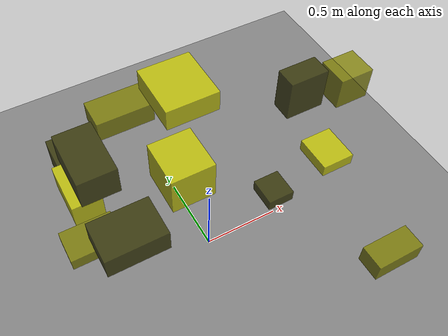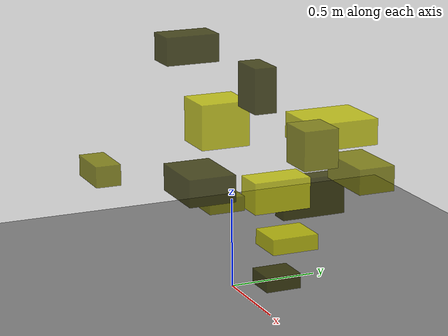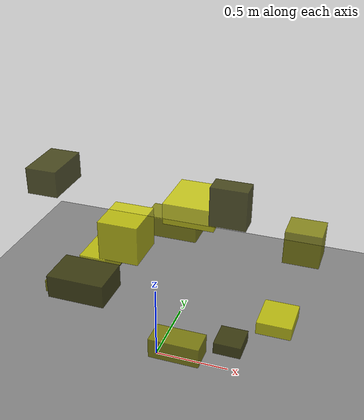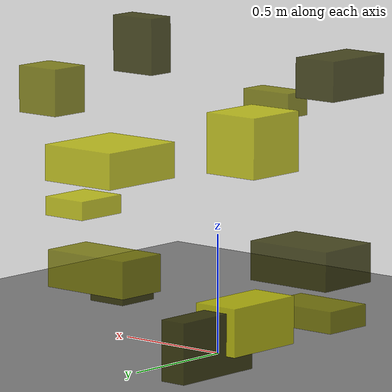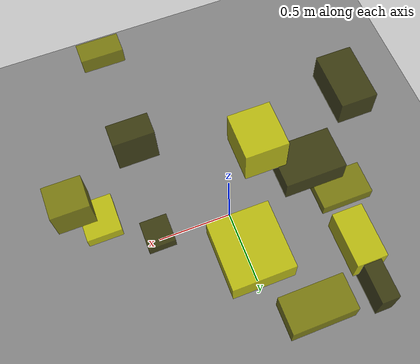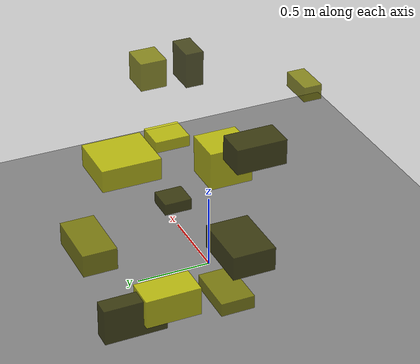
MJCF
<?xml version="1.0"?>
<mujoco model="obstacle_scene">
  <compiler angle="radian" coordinate="local"/>
  <option timestep="0.001" gravity="0 0 -9.81"/>

  <asset>
    <material name="obstacle_mat" rgba="0.8 0.8 0.0 0.8"/>
    <material name="ground_mat" rgba="0.5 0.5 0.5 1"/>
  </asset>

  <worldbody>
    <!-- Ground plane -->
    <geom name="ground" type="plane" size="3 3 0.1" material="ground_mat"/>

    <!-- Obstacles -->
    <body name="obstacle_0" pos="-0.631547 0.791161 0.254229">
      <geom name="obs_0" type="box" size="0.057613 0.202608 0.121453" rgba="0.2 0.2 0.0 0.8"/>
    </body>
    <body name="obstacle_1" pos="0.466492 -0.914525 0.896250">
      <geom name="obs_1" type="box" size="0.126064 0.063356 0.052849" rgba="0.5 0.5 0.0 0.8"/>
    </body>
    <body name="obstacle_2" pos="-0.631324 0.563891 0.302311">
      <geom name="obs_2" type="box" size="0.099653 0.179478 0.096220" rgba="0.8 0.8 0.0 0.8"/>
    </body>
    <body name="obstacle_3" pos="0.501623 0.033879 0.204984">
      <geom name="obs_3" type="box" size="0.090062 0.096726 0.040646" rgba="0.2 0.2 0.0 0.8"/>
    </body>
    <body name="obstacle_4" pos="-0.689327 0.200167 0.292942">
      <geom name="obs_4" type="box" size="0.167382 0.109307 0.044306" rgba="0.5 0.5 0.0 0.8"/>
    </body>
    <body name="obstacle_5" pos="0.799674 -0.050979 0.521522">
      <geom name="obs_5" type="box" size="0.105146 0.122561 0.039962" rgba="0.8 0.8 0.0 0.8"/>
    </body>
    <body name="obstacle_6" pos="-0.649656 0.007345 1.225937">
      <geom name="obs_6" type="box" size="0.096701 0.158643 0.080934" rgba="0.2 0.2 0.0 0.8"/>
    </body>
    <body name="obstacle_7" pos="0.891989 0.040637 1.020703">
      <geom name="obs_7" type="box" size="0.103002 0.091441 0.099724" rgba="0.5 0.5 0.0 0.8"/>
    </body>
    <body name="obstacle_8" pos="-0.177455 -0.011180 0.903135">
      <geom name="obs_8" type="box" size="0.125837 0.140218 0.125700" rgba="0.8 0.8 0.0 0.8"/>
    </body>
    <body name="obstacle_9" pos="0.481485 -0.069865 1.238958">
      <geom name="obs_9" type="box" size="0.106497 0.059200 0.118023" rgba="0.2 0.2 0.0 0.8"/>
    </body>
    <body name="obstacle_10" pos="-0.181962 0.891947 0.504670">
      <geom name="obs_10" type="box" size="0.198715 0.110867 0.074630" rgba="0.5 0.5 0.0 0.8"/>
    </body>
    <body name="obstacle_11" pos="0.092296 0.555195 0.866437">
      <geom name="obs_11" type="box" size="0.175223 0.194543 0.073651" rgba="0.8 0.8 0.0 0.8"/>
    </body>
    <body name="obstacle_12" pos="-0.513731 0.022438 0.455920">
      <geom name="obs_12" type="box" size="0.197619 0.141579 0.080482" rgba="0.2 0.2 0.0 0.8"/>
    </body>
  </worldbody>
</mujoco>
